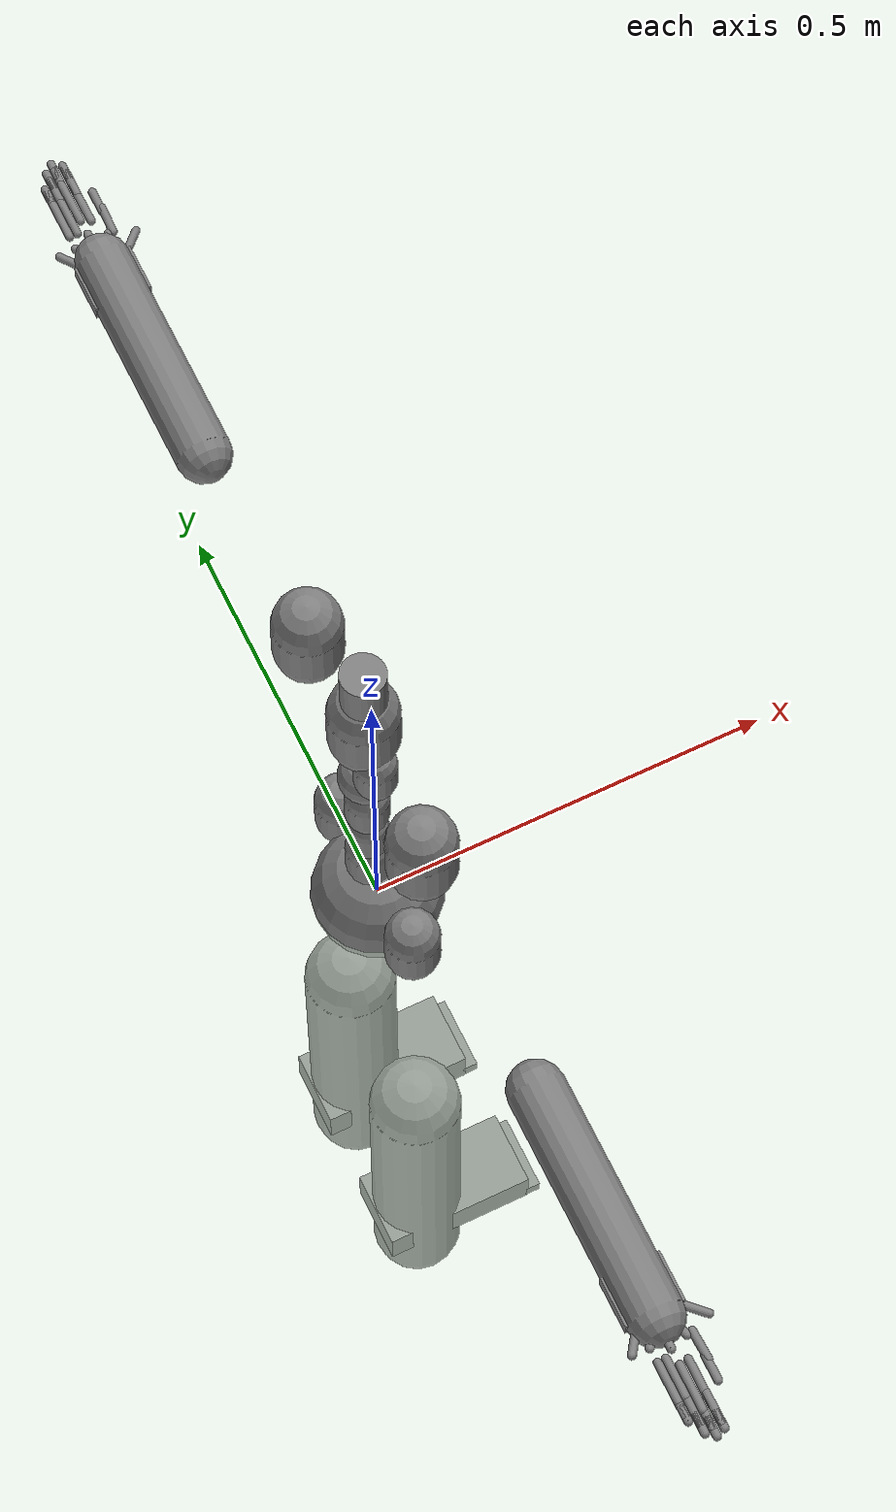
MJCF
<?xml version="1.0" ?>
<mujoco model="humanoid">
  <compiler coordinate="local"/>
  <statistic extent="2" center="0 0 1"/>
  <option timestep="0.00555"/>
  <default>
    <motor ctrlrange="-1 1" ctrllimited="true"/>
    <geom type="capsule" condim="1" friction="1.0 0.05 0.05" solimp=".9 .99 .003" solref=".015 1"/>
    <joint type="hinge" damping="0.1" stiffness="5" armature=".007" limited="true" solimplimit="0 .99 .01"/>
    <site size=".04" group="3"/>
  </default>
  <asset>
    <texture type="skybox" builtin="gradient" rgb1=".4 .5 .6" rgb2="0 0 0" width="100" height="100"/>
    <texture builtin="flat" height="1278" mark="cross" markrgb="1 1 1" name="texgeom" random="0.01" rgb1="0.8 0.6 0.4" rgb2="0.8 0.6 0.4" type="cube" width="127"/>
    <texture builtin="checker" height="100" name="texplane" rgb1="0 0 0" rgb2="0.8 0.8 0.8" type="2d" width="100"/>
    <material name="MatPlane" reflectance="0.5" shininess="1" specular="1" texrepeat="60 60" texture="texplane"/>
    <material name="geom" texture="texgeom" texuniform="true"/>
  </asset>
  <worldbody>
    <light cutoff="100" diffuse="1 1 1" dir="-0 0 -1.3" directional="true" exponent="1" pos="0 0 1.3" specular=".1 .1 .1"/>
    <geom conaffinity="1" condim="3" name="floor" pos="0 0 0" rgba="0.8 0.9 0.8 1" size="100 100 .2" type="plane" material="MatPlane"/>
    <body name="pHipOrigin" pos="0 0 0">
      <freejoint name="pHipOrigin"/>
      <geom type="sphere" contype="1" conaffinity="1" density="4629.6296296296305" size="0.07961" pos="0.0000 0.0000 -0.0000"/>
      <body name="jL5S1" pos="-0.00897069 0 0.08073599">
        <geom type="capsule" contype="1" conaffinity="1" density="1000" fromto="0 0 0.01625 0 0 0.05686" size="0.02843"/>
        <joint name="jL5S1_x" type="hinge" pos="0 0 0" axis="1 0 0" stiffness="500" damping="500" armature="0.02" range="-180.0000 180.0000"/>
        <joint name="jL5S1_y" type="hinge" pos="0 0 0" axis="0 1 0" stiffness="500" damping="500" armature="0.02" range="-180.0000 180.0000"/>
        <joint name="jL5S1_z" type="hinge" pos="0 0 0" axis="0 0 1" stiffness="500" damping="500" armature="0.02" range="-180.0000 180.0000"/>
        <body name="jL4L3" pos="0 0 0.06915518">
          <geom type="capsule" contype="1" conaffinity="1" density="1000" fromto="0 0 0.01383 0 0 0.04841" size="0.02420"/>
          <joint name="jL4L3_x" type="hinge" pos="0 0 0" axis="1 0 0" stiffness="500" damping="500" armature="0.02" range="-180.0000 180.0000"/>
          <joint name="jL4L3_y" type="hinge" pos="0 0 0" axis="0 1 0" stiffness="500" damping="500" armature="0.02" range="-180.0000 180.0000"/>
          <joint name="jL4L3_z" type="hinge" pos="0 0 0" axis="0 0 1" stiffness="500" damping="500" armature="0.02" range="-180.0000 180.0000"/>
          <body name="jL1T12" pos="-0.00057833 0 0.07496225">
            <geom type="capsule" contype="1" conaffinity="1" density="1000" fromto="0 0 0.01499 0 0 0.05248" size="0.02624"/>
            <joint name="jL1T12_x" type="hinge" pos="0 0 0" axis="1 0 0" stiffness="500" damping="500" armature="0.02" range="-180.0000 180.0000"/>
            <joint name="jL1T12_y" type="hinge" pos="0 0 0" axis="0 1 0" stiffness="500" damping="500" armature="0.02" range="-180.0000 180.0000"/>
            <joint name="jL1T12_z" type="hinge" pos="0 0 0" axis="0 0 1" stiffness="500" damping="500" armature="0.02" range="-180.0000 180.0000"/>
            <body name="jT9T8" pos="-0.00062379 0 0.08069769">
              <geom type="sphere" contype="1" conaffinity="1" density="1000" size="0.03228" pos="0.000 0.0000 0.032280"/>
              <joint name="jT9T8_x" type="hinge" pos="0 0 0" axis="1 0 0" stiffness="500" damping="500" armature="0.02" range="-180.0000 180.0000"/>
              <joint name="jT9T8_y" type="hinge" pos="0 0 0" axis="0 1 0" stiffness="500" damping="500" armature="0.02" range="-180.0000 180.0000"/>
              <joint name="jT9T8_z" type="hinge" pos="0 0 0" axis="0 0 1" stiffness="500" damping="500" armature="0.02" range="-180.0000 180.0000"/>
              <body name="jT1C7" pos="0 0 0.11781600">
                <geom type="capsule" contype="1" conaffinity="1" density="1000" fromto="0 0 0.02356 0 0 0.08247" size="0.04124"/>
                <joint name="jT1C7_x" type="hinge" pos="0 0 0" axis="1 0 0" stiffness="500" damping="500" armature="0.02" range="-180.0000 180.0000"/>
                <joint name="jT1C7_y" type="hinge" pos="0 0 0" axis="0 1 0" stiffness="500" damping="500" armature="0.02" range="-180.0000 180.0000"/>
                <joint name="jT1C7_z" type="hinge" pos="0 0 0" axis="0 0 1" stiffness="500" damping="500" armature="0.02" range="-180.0000 180.0000"/>
                <body name="jC1Head" pos="0.00103082 0 0.08737546">
                  <geom type="cylinder" contype="1" conaffinity="1" density="1000" fromto="0 0 0 0 0 0.08738" size="0.02621"/>
                  <joint name="jC1Head_x" type="hinge" pos="0 0 0" axis="1 0 0" stiffness="500" damping="500" armature="0.02" range="-180.0000 180.0000"/>
                  <joint name="jC1Head_y" type="hinge" pos="0 0 0" axis="0 1 0" stiffness="500" damping="500" armature="0.02" range="-180.0000 180.0000"/>
                  <joint name="jC1Head_z" type="hinge" pos="0 0 0" axis="0 0 1" stiffness="500" damping="500" armature="0.02" range="-180.0000 180.0000"/>
                </body>
              </body>
              <body name="jRightT4Shoulder" pos="0 -0.02727494 0.06650229">
                <geom type="capsule" contype="1" conaffinity="1" density="1000" fromto="0 0 0.01438 0 0 0.05031" size="0.02516"/>
                <joint name="jRightT4Shoulder_x" type="hinge" pos="0 0 0" axis="1 0 0" stiffness="500" damping="500" armature="0.02" range="-180.0000 180.0000"/>
                <joint name="jRightT4Shoulder_y" type="hinge" pos="0 0 0" axis="0 1 0" stiffness="500" damping="500" armature="0.02" range="-180.0000 180.0000"/>
                <joint name="jRightT4Shoulder_z" type="hinge" pos="0 0 0" axis="0 0 1" stiffness="500" damping="500" armature="0.02" range="-180.0000 180.0000"/>
                <body name="jRightShoulder" pos="0 -0.11701642 0">
                  <geom type="capsule" contype="1" conaffinity="1" density="1000" fromto="0 0 0.02340 0 0 0.08191" size="0.04096"/>
                  <joint name="jRightShoulder_x" type="hinge" pos="0 0 0" axis="1 0 0" stiffness="500" damping="500" armature="0.02" range="-180.0000 180.0000"/>
                  <joint name="jRightShoulder_y" type="hinge" pos="0 0 0" axis="0 1 0" stiffness="500" damping="500" armature="0.02" range="-180.0000 180.0000"/>
                  <joint name="jRightShoulder_z" type="hinge" pos="0 0 0" axis="0 0 1" stiffness="500" damping="500" armature="0.02" range="-180.0000 180.0000"/>
                  <body name="jRightElbow" pos="0 -0.27966020 0">
                    <geom type="capsule" contype="1" conaffinity="1" density="1000" fromto="0 0 0 0.00000000 -0.27966020 0.00000000" size="0.03356"/>
                    <joint name="jRightElbow_x" type="hinge" pos="0 0 0" axis="1 0 0" stiffness="500" damping="500" armature="0.02" range="-180.0000 180.0000"/>
                    <joint name="jRightElbow_y" type="hinge" pos="0 0 0" axis="0 1 0" stiffness="500" damping="500" armature="0.02" range="-180.0000 180.0000"/>
                    <joint name="jRightElbow_z" type="hinge" pos="0 0 0" axis="0 0 1" stiffness="500" damping="500" armature="0.02" range="-180.0000 180.0000"/>
                    <body name="jRightWrist" pos="0.00010053 -0.24976394 0">
                      <geom density="1000" type="box" pos="0 0 0" size="0.035 0.03 0.01" quat="1.0000 0.0000 0.0000 0.0000"/>
                      <joint name="jRightWrist_x" type="hinge" pos="0 0 0" axis="1 0 0" stiffness="500" damping="500" armature="0.02" range="-180.0000 180.0000"/>
                      <joint name="jRightWrist_y" type="hinge" pos="0 0 0" axis="0 1 0" stiffness="500" damping="500" armature="0.02" range="-180.0000 180.0000"/>
                      <joint name="jRightWrist_z" type="hinge" pos="0 0 0" axis="0 0 1" stiffness="500" damping="500" armature="0.02" range="-180.0000 180.0000"/>
                      <body name="jRightFirstCMC" pos="0.02649413 -0.02539610 -0.00119982">
                        <geom type="capsule" contype="1" conaffinity="1" density="1000" fromto="0 0 0 0.02649413 -0.02539610 -0.00119982" size="0.005"/>
                        <joint name="jRightFirstCMC_x" type="hinge" pos="0 0 0" axis="1 0 0" stiffness="500" damping="500" armature="0.02" range="-180.0000 180.0000"/>
                        <joint name="jRightFirstCMC_y" type="hinge" pos="0 0 0" axis="0 1 0" stiffness="500" damping="500" armature="0.02" range="-180.0000 180.0000"/>
                        <joint name="jRightFirstCMC_z" type="hinge" pos="0 0 0" axis="0 0 1" stiffness="500" damping="500" armature="0.02" range="-180.0000 180.0000"/>
                        <body name="jRightFirstMCP" pos="0.00123781 -0.03493008 0.00073807">
                          <geom type="capsule" contype="1" conaffinity="1" density="1000" fromto="0 0 0 0.00123781 -0.03493008 0.00073807" size="0.005"/>
                          <joint name="jRightFirstMCP_x" type="hinge" pos="0 0 0" axis="1 0 0" stiffness="500" damping="500" armature="0.02" range="-180.0000 180.0000"/>
                          <joint name="jRightFirstMCP_y" type="hinge" pos="0 0 0" axis="0 1 0" stiffness="500" damping="500" armature="0.02" range="-180.0000 180.0000"/>
                          <joint name="jRightFirstMCP_z" type="hinge" pos="0 0 0" axis="0 0 1" stiffness="500" damping="500" armature="0.02" range="-180.0000 180.0000"/>
                          <body name="jRightIP" pos="0 -0.02965622 0">
                            <geom type="capsule" contype="1" conaffinity="1" density="1000" fromto="0 0 0 0.00000000 -0.02965622 0.00000000" size="0.005"/>
                            <joint name="jRightIP_x" type="hinge" pos="0 0 0" axis="1 0 0" stiffness="500" damping="500" armature="0.02" range="-180.0000 180.0000"/>
                            <joint name="jRightIP_y" type="hinge" pos="0 0 0" axis="0 1 0" stiffness="500" damping="500" armature="0.02" range="-180.0000 180.0000"/>
                            <joint name="jRightIP_z" type="hinge" pos="0 0 0" axis="0 0 1" stiffness="500" damping="500" armature="0.02" range="-180.0000 180.0000"/>
                          </body>
                        </body>
                      </body>
                      <body name="jRightSecondCMC" pos="0.01060692 -0.03099007 -0.00054054">
                        <geom type="capsule" contype="1" conaffinity="1" density="1000" fromto="0 0 0 0.01060692 -0.03099007 -0.00054054" size="0.005"/>
                        <joint name="jRightSecondCMC_x" type="hinge" pos="0 0 0" axis="1 0 0" stiffness="500" damping="500" armature="0.02" range="-180.0000 180.0000"/>
                        <joint name="jRightSecondCMC_y" type="hinge" pos="0 0 0" axis="0 1 0" stiffness="500" damping="500" armature="0.02" range="-180.0000 180.0000"/>
                        <joint name="jRightSecondCMC_z" type="hinge" pos="0 0 0" axis="0 0 1" stiffness="500" damping="500" armature="0.02" range="-180.0000 180.0000"/>
                        <body name="jRightSecondMCP" pos="-0.00034290 -0.05469058 -0.00056732">
                          <geom type="capsule" contype="1" conaffinity="1" density="1000" fromto="0 0 0 -0.00034290 -0.05469058 -0.00056732" size="0.005"/>
                          <joint name="jRightSecondMCP_x" type="hinge" pos="0 0 0" axis="1 0 0" stiffness="500" damping="500" armature="0.02" range="-180.0000 180.0000"/>
                          <joint name="jRightSecondMCP_y" type="hinge" pos="0 0 0" axis="0 1 0" stiffness="500" damping="500" armature="0.02" range="-180.0000 180.0000"/>
                          <joint name="jRightSecondMCP_z" type="hinge" pos="0 0 0" axis="0 0 1" stiffness="500" damping="500" armature="0.02" range="-180.0000 180.0000"/>
                          <body name="jRightSecondPIP" pos="0 -0.03959557 0">
                            <geom type="capsule" contype="1" conaffinity="1" density="1000" fromto="0 0 0 0.00000000 -0.03959557 0.00000000" size="0.005"/>
                            <joint name="jRightSecondPIP_x" type="hinge" pos="0 0 0" axis="1 0 0" stiffness="500" damping="500" armature="0.02" range="-180.0000 180.0000"/>
                            <joint name="jRightSecondPIP_y" type="hinge" pos="0 0 0" axis="0 1 0" stiffness="500" damping="500" armature="0.02" range="-180.0000 180.0000"/>
                            <joint name="jRightSecondPIP_z" type="hinge" pos="0 0 0" axis="0 0 1" stiffness="500" damping="500" armature="0.02" range="-180.0000 180.0000"/>
                            <body name="jRightSecondDIP" pos="0 -0.02148326 0">
                              <geom type="capsule" contype="1" conaffinity="1" density="1000" fromto="0 0 0 0.00000000 -0.02148326 0.00000000" size="0.005"/>
                              <joint name="jRightSecondDIP_x" type="hinge" pos="0 0 0" axis="1 0 0" stiffness="500" damping="500" armature="0.02" range="-180.0000 180.0000"/>
                              <joint name="jRightSecondDIP_y" type="hinge" pos="0 0 0" axis="0 1 0" stiffness="500" damping="500" armature="0.02" range="-180.0000 180.0000"/>
                              <joint name="jRightSecondDIP_z" type="hinge" pos="0 0 0" axis="0 0 1" stiffness="500" damping="500" armature="0.02" range="-180.0000 180.0000"/>
                            </body>
                          </body>
                        </body>
                      </body>
                      <body name="jRightThirdCMC" pos="-0.00063977 -0.03459741 0.00145453">
                        <geom type="capsule" contype="1" conaffinity="1" density="1000" fromto="0 0 0 -0.00063977 -0.03459741 0.00145453" size="0.005"/>
                        <joint name="jRightThirdCMC_x" type="hinge" pos="0 0 0" axis="1 0 0" stiffness="500" damping="500" armature="0.02" range="-180.0000 180.0000"/>
                        <joint name="jRightThirdCMC_y" type="hinge" pos="0 0 0" axis="0 1 0" stiffness="500" damping="500" armature="0.02" range="-180.0000 180.0000"/>
                        <joint name="jRightThirdCMC_z" type="hinge" pos="0 0 0" axis="0 0 1" stiffness="500" damping="500" armature="0.02" range="-180.0000 180.0000"/>
                        <body name="jRightThirdMCP" pos="-0.00065011 -0.05386139 0.00146536">
                          <geom type="capsule" contype="1" conaffinity="1" density="1000" fromto="0 0 0 -0.00065011 -0.05386139 0.00146536" size="0.005"/>
                          <joint name="jRightThirdMCP_x" type="hinge" pos="0 0 0" axis="1 0 0" stiffness="500" damping="500" armature="0.02" range="-180.0000 180.0000"/>
                          <joint name="jRightThirdMCP_y" type="hinge" pos="0 0 0" axis="0 1 0" stiffness="500" damping="500" armature="0.02" range="-180.0000 180.0000"/>
                          <joint name="jRightThirdMCP_z" type="hinge" pos="0 0 0" axis="0 0 1" stiffness="500" damping="500" armature="0.02" range="-180.0000 180.0000"/>
                          <body name="jRightThirdPIP" pos="0 -0.03889234 0">
                            <geom type="capsule" contype="1" conaffinity="1" density="1000" fromto="0 0 0 0.00000000 -0.03889234 0.00000000" size="0.005"/>
                            <joint name="jRightThirdPIP_x" type="hinge" pos="0 0 0" axis="1 0 0" stiffness="500" damping="500" armature="0.02" range="-180.0000 180.0000"/>
                            <joint name="jRightThirdPIP_y" type="hinge" pos="0 0 0" axis="0 1 0" stiffness="500" damping="500" armature="0.02" range="-180.0000 180.0000"/>
                            <joint name="jRightThirdPIP_z" type="hinge" pos="0 0 0" axis="0 0 1" stiffness="500" damping="500" armature="0.02" range="-180.0000 180.0000"/>
                            <body name="jRightThirdDIP" pos="0 -0.02296187 0">
                              <geom type="capsule" contype="1" conaffinity="1" density="1000" fromto="0 0 0 0.00000000 -0.02296187 0.00000000" size="0.005"/>
                              <joint name="jRightThirdDIP_x" type="hinge" pos="0 0 0" axis="1 0 0" stiffness="500" damping="500" armature="0.02" range="-180.0000 180.0000"/>
                              <joint name="jRightThirdDIP_y" type="hinge" pos="0 0 0" axis="0 1 0" stiffness="500" damping="500" armature="0.02" range="-180.0000 180.0000"/>
                              <joint name="jRightThirdDIP_z" type="hinge" pos="0 0 0" axis="0 0 1" stiffness="500" damping="500" armature="0.02" range="-180.0000 180.0000"/>
                            </body>
                          </body>
                        </body>
                      </body>
                      <body name="jRightFourthCMC" pos="-0.01053436 -0.02933992 0.00069062">
                        <geom type="capsule" contype="1" conaffinity="1" density="1000" fromto="0 0 0 -0.01053436 -0.02933992 0.00069062" size="0.005"/>
                        <joint name="jRightFourthCMC_x" type="hinge" pos="0 0 0" axis="1 0 0" stiffness="500" damping="500" armature="0.02" range="-180.0000 180.0000"/>
                        <joint name="jRightFourthCMC_y" type="hinge" pos="0 0 0" axis="0 1 0" stiffness="500" damping="500" armature="0.02" range="-180.0000 180.0000"/>
                        <joint name="jRightFourthCMC_z" type="hinge" pos="0 0 0" axis="0 0 1" stiffness="500" damping="500" armature="0.02" range="-180.0000 180.0000"/>
                        <body name="jRightFourthMCP" pos="-0.00033687 -0.04617147 0.00072539">
                          <geom type="capsule" contype="1" conaffinity="1" density="1000" fromto="0 0 0 -0.00033687 -0.04617147 0.00072539" size="0.005"/>
                          <joint name="jRightFourthMCP_x" type="hinge" pos="0 0 0" axis="1 0 0" stiffness="500" damping="500" armature="0.02" range="-180.0000 180.0000"/>
                          <joint name="jRightFourthMCP_y" type="hinge" pos="0 0 0" axis="0 1 0" stiffness="500" damping="500" armature="0.02" range="-180.0000 180.0000"/>
                          <joint name="jRightFourthMCP_z" type="hinge" pos="0 0 0" axis="0 0 1" stiffness="500" damping="500" armature="0.02" range="-180.0000 180.0000"/>
                          <body name="jRightFourthPIP" pos="0 -0.04067477 0">
                            <geom type="capsule" contype="1" conaffinity="1" density="1000" fromto="0 0 0 0.00000000 -0.04067477 0.00000000" size="0.005"/>
                            <joint name="jRightFourthPIP_x" type="hinge" pos="0 0 0" axis="1 0 0" stiffness="500" damping="500" armature="0.02" range="-180.0000 180.0000"/>
                            <joint name="jRightFourthPIP_y" type="hinge" pos="0 0 0" axis="0 1 0" stiffness="500" damping="500" armature="0.02" range="-180.0000 180.0000"/>
                            <joint name="jRightFourthPIP_z" type="hinge" pos="0 0 0" axis="0 0 1" stiffness="500" damping="500" armature="0.02" range="-180.0000 180.0000"/>
                            <body name="jRightFourthDIP" pos="0 -0.02435815 0">
                              <geom type="capsule" contype="1" conaffinity="1" density="1000" fromto="0 0 0 0.00000000 -0.02435815 0.00000000" size="0.005"/>
                              <joint name="jRightFourthDIP_x" type="hinge" pos="0 0 0" axis="1 0 0" stiffness="500" damping="500" armature="0.02" range="-180.0000 180.0000"/>
                              <joint name="jRightFourthDIP_y" type="hinge" pos="0 0 0" axis="0 1 0" stiffness="500" damping="500" armature="0.02" range="-180.0000 180.0000"/>
                              <joint name="jRightFourthDIP_z" type="hinge" pos="0 0 0" axis="0 0 1" stiffness="500" damping="500" armature="0.02" range="-180.0000 180.0000"/>
                            </body>
                          </body>
                        </body>
                      </body>
                      <body name="jRightFifthCMC" pos="-0.02057659 -0.02867113 0.00056559">
                        <geom type="capsule" contype="1" conaffinity="1" density="1000" fromto="0 0 0 -0.02057659 -0.02867113 0.00056559" size="0.005"/>
                        <joint name="jRightFifthCMC_x" type="hinge" pos="0 0 0" axis="1 0 0" stiffness="500" damping="500" armature="0.02" range="-180.0000 180.0000"/>
                        <joint name="jRightFifthCMC_y" type="hinge" pos="0 0 0" axis="0 1 0" stiffness="500" damping="500" armature="0.02" range="-180.0000 180.0000"/>
                        <joint name="jRightFifthCMC_z" type="hinge" pos="0 0 0" axis="0 0 1" stiffness="500" damping="500" armature="0.02" range="-180.0000 180.0000"/>
                        <body name="jRightFifthMCP" pos="-0.00000697 -0.04718546 0.00064933">
                          <geom type="capsule" contype="1" conaffinity="1" density="1000" fromto="0 0 0 -0.00000697 -0.04718546 0.00064933" size="0.005"/>
                          <joint name="jRightFifthMCP_x" type="hinge" pos="0 0 0" axis="1 0 0" stiffness="500" damping="500" armature="0.02" range="-180.0000 180.0000"/>
                          <joint name="jRightFifthMCP_y" type="hinge" pos="0 0 0" axis="0 1 0" stiffness="500" damping="500" armature="0.02" range="-180.0000 180.0000"/>
                          <joint name="jRightFifthMCP_z" type="hinge" pos="0 0 0" axis="0 0 1" stiffness="500" damping="500" armature="0.02" range="-180.0000 180.0000"/>
                          <body name="jRightFifthPIP" pos="0 -0.03291958 0">
                            <geom type="capsule" contype="1" conaffinity="1" density="1000" fromto="0 0 0 0.00000000 -0.03291958 0.00000000" size="0.005"/>
                            <joint name="jRightFifthPIP_x" type="hinge" pos="0 0 0" axis="1 0 0" stiffness="500" damping="500" armature="0.02" range="-180.0000 180.0000"/>
                            <joint name="jRightFifthPIP_y" type="hinge" pos="0 0 0" axis="0 1 0" stiffness="500" damping="500" armature="0.02" range="-180.0000 180.0000"/>
                            <joint name="jRightFifthPIP_z" type="hinge" pos="0 0 0" axis="0 0 1" stiffness="500" damping="500" armature="0.02" range="-180.0000 180.0000"/>
                            <body name="jRightFifthDIP" pos="0 -0.01861694 0">
                              <geom type="capsule" contype="1" conaffinity="1" density="1000" fromto="0 0 0 0.00000000 -0.01861694 0.00000000" size="0.005"/>
                              <joint name="jRightFifthDIP_x" type="hinge" pos="0 0 0" axis="1 0 0" stiffness="500" damping="500" armature="0.02" range="-180.0000 180.0000"/>
                              <joint name="jRightFifthDIP_y" type="hinge" pos="0 0 0" axis="0 1 0" stiffness="500" damping="500" armature="0.02" range="-180.0000 180.0000"/>
                              <joint name="jRightFifthDIP_z" type="hinge" pos="0 0 0" axis="0 0 1" stiffness="500" damping="500" armature="0.02" range="-180.0000 180.0000"/>
                            </body>
                          </body>
                        </body>
                      </body>
                    </body>
                  </body>
                </body>
              </body>
              <body name="jLeftT4Shoulder" pos="0 0.02735422 0.06669559">
                <geom type="capsule" contype="1" conaffinity="1" density="1000" fromto="0 0 0.01442 0 0 0.05046" size="0.02523"/>
                <joint name="jLeftT4Shoulder_x" type="hinge" pos="0 0 0" axis="1 0 0" stiffness="500" damping="500" armature="0.02" range="-180.0000 180.0000"/>
                <joint name="jLeftT4Shoulder_y" type="hinge" pos="0 0 0" axis="0 1 0" stiffness="500" damping="500" armature="0.02" range="-180.0000 180.0000"/>
                <joint name="jLeftT4Shoulder_z" type="hinge" pos="0 0 0" axis="0 0 1" stiffness="500" damping="500" armature="0.02" range="-180.0000 180.0000"/>
                <body name="jLeftShoulder" pos="0 0.11727697 0">
                  <geom type="capsule" contype="1" conaffinity="1" density="1000" fromto="0 0 0.02346 0 0 0.08209" size="0.04105"/>
                  <joint name="jLeftShoulder_x" type="hinge" pos="0 0 0" axis="1 0 0" stiffness="500" damping="500" armature="0.02" range="-180.0000 180.0000"/>
                  <joint name="jLeftShoulder_y" type="hinge" pos="0 0 0" axis="0 1 0" stiffness="500" damping="500" armature="0.02" range="-180.0000 180.0000"/>
                  <joint name="jLeftShoulder_z" type="hinge" pos="0 0 0" axis="0 0 1" stiffness="500" damping="500" armature="0.02" range="-180.0000 180.0000"/>
                  <body name="jLeftElbow" pos="0 0.27942023 0">
                    <geom type="capsule" contype="1" conaffinity="1" density="1000" fromto="0 0 0 0.00000000 0.27942023 0.00000000" size="0.03353"/>
                    <joint name="jLeftElbow_x" type="hinge" pos="0 0 0" axis="1 0 0" stiffness="500" damping="500" armature="0.02" range="-180.0000 180.0000"/>
                    <joint name="jLeftElbow_y" type="hinge" pos="0 0 0" axis="0 1 0" stiffness="500" damping="500" armature="0.02" range="-180.0000 180.0000"/>
                    <joint name="jLeftElbow_z" type="hinge" pos="0 0 0" axis="0 0 1" stiffness="500" damping="500" armature="0.02" range="-180.0000 180.0000"/>
                    <body name="jLeftWrist" pos="0.00010042 0.24949146 0">
                      <geom density="1000" type="box" pos="0 0 0" size="0.035 0.03 0.01" quat="1.0000 0.0000 0.0000 0.0000"/>
                      <joint name="jLeftWrist_x" type="hinge" pos="0 0 0" axis="1 0 0" stiffness="500" damping="500" armature="0.02" range="-180.0000 180.0000"/>
                      <joint name="jLeftWrist_y" type="hinge" pos="0 0 0" axis="0 1 0" stiffness="500" damping="500" armature="0.02" range="-180.0000 180.0000"/>
                      <joint name="jLeftWrist_z" type="hinge" pos="0 0 0" axis="0 0 1" stiffness="500" damping="500" armature="0.02" range="-180.0000 180.0000"/>
                      <body name="jLeftFirstCMC" pos="0.02593151 0.02599275 -0.00116061">
                        <geom type="capsule" contype="1" conaffinity="1" density="1000" fromto="0 0 0 0.02593151 0.02599275 -0.00116061" size="0.005"/>
                        <joint name="jLeftFirstCMC_x" type="hinge" pos="0 0 0" axis="1 0 0" stiffness="500" damping="500" armature="0.02" range="-180.0000 180.0000"/>
                        <joint name="jLeftFirstCMC_y" type="hinge" pos="0 0 0" axis="0 1 0" stiffness="500" damping="500" armature="0.02" range="-180.0000 180.0000"/>
                        <joint name="jLeftFirstCMC_z" type="hinge" pos="0 0 0" axis="0 0 1" stiffness="500" damping="500" armature="0.02" range="-180.0000 180.0000"/>
                        <body name="jLeftFirstMCP" pos="0.00122588 0.03492930 0.00071928">
                          <geom type="capsule" contype="1" conaffinity="1" density="1000" fromto="0 0 0 0.00122588 0.03492930 0.00071928" size="0.005"/>
                          <joint name="jLeftFirstMCP_x" type="hinge" pos="0 0 0" axis="1 0 0" stiffness="500" damping="500" armature="0.02" range="-180.0000 180.0000"/>
                          <joint name="jLeftFirstMCP_y" type="hinge" pos="0 0 0" axis="0 1 0" stiffness="500" damping="500" armature="0.02" range="-180.0000 180.0000"/>
                          <joint name="jLeftFirstMCP_z" type="hinge" pos="0 0 0" axis="0 0 1" stiffness="500" damping="500" armature="0.02" range="-180.0000 180.0000"/>
                          <body name="jLeftIP" pos="0 0.02965622 0">
                            <geom type="capsule" contype="1" conaffinity="1" density="1000" fromto="0 0 0 0.00000000 0.02965622 0.00000000" size="0.005"/>
                            <joint name="jLeftIP_x" type="hinge" pos="0 0 0" axis="1 0 0" stiffness="500" damping="500" armature="0.02" range="-180.0000 180.0000"/>
                            <joint name="jLeftIP_y" type="hinge" pos="0 0 0" axis="0 1 0" stiffness="500" damping="500" armature="0.02" range="-180.0000 180.0000"/>
                            <joint name="jLeftIP_z" type="hinge" pos="0 0 0" axis="0 0 1" stiffness="500" damping="500" armature="0.02" range="-180.0000 180.0000"/>
                          </body>
                        </body>
                      </body>
                      <body name="jLeftSecondCMC" pos="0.01072909 0.03093305 -0.00054501">
                        <geom type="capsule" contype="1" conaffinity="1" density="1000" fromto="0 0 0 0.01072909 0.03093305 -0.00054501" size="0.005"/>
                        <joint name="jLeftSecondCMC_x" type="hinge" pos="0 0 0" axis="1 0 0" stiffness="500" damping="500" armature="0.02" range="-180.0000 180.0000"/>
                        <joint name="jLeftSecondCMC_y" type="hinge" pos="0 0 0" axis="0 1 0" stiffness="500" damping="500" armature="0.02" range="-180.0000 180.0000"/>
                        <joint name="jLeftSecondCMC_z" type="hinge" pos="0 0 0" axis="0 0 1" stiffness="500" damping="500" armature="0.02" range="-180.0000 180.0000"/>
                        <body name="jLeftSecondMCP" pos="-0.00029899 0.05469171 -0.00057433">
                          <geom type="capsule" contype="1" conaffinity="1" density="1000" fromto="0 0 0 -0.00029899 0.05469171 -0.00057433" size="0.005"/>
                          <joint name="jLeftSecondMCP_x" type="hinge" pos="0 0 0" axis="1 0 0" stiffness="500" damping="500" armature="0.02" range="-180.0000 180.0000"/>
                          <joint name="jLeftSecondMCP_y" type="hinge" pos="0 0 0" axis="0 1 0" stiffness="500" damping="500" armature="0.02" range="-180.0000 180.0000"/>
                          <joint name="jLeftSecondMCP_z" type="hinge" pos="0 0 0" axis="0 0 1" stiffness="500" damping="500" armature="0.02" range="-180.0000 180.0000"/>
                          <body name="jLeftSecondPIP" pos="0 0.03959557 0">
                            <geom type="capsule" contype="1" conaffinity="1" density="1000" fromto="0 0 0 0.00000000 0.03959557 0.00000000" size="0.005"/>
                            <joint name="jLeftSecondPIP_x" type="hinge" pos="0 0 0" axis="1 0 0" stiffness="500" damping="500" armature="0.02" range="-180.0000 180.0000"/>
                            <joint name="jLeftSecondPIP_y" type="hinge" pos="0 0 0" axis="0 1 0" stiffness="500" damping="500" armature="0.02" range="-180.0000 180.0000"/>
                            <joint name="jLeftSecondPIP_z" type="hinge" pos="0 0 0" axis="0 0 1" stiffness="500" damping="500" armature="0.02" range="-180.0000 180.0000"/>
                            <body name="jLeftSecondDIP" pos="0 0.02148326 0">
                              <geom type="capsule" contype="1" conaffinity="1" density="1000" fromto="0 0 0 0.00000000 0.02148326 0.00000000" size="0.005"/>
                              <joint name="jLeftSecondDIP_x" type="hinge" pos="0 0 0" axis="1 0 0" stiffness="500" damping="500" armature="0.02" range="-180.0000 180.0000"/>
                              <joint name="jLeftSecondDIP_y" type="hinge" pos="0 0 0" axis="0 1 0" stiffness="500" damping="500" armature="0.02" range="-180.0000 180.0000"/>
                              <joint name="jLeftSecondDIP_z" type="hinge" pos="0 0 0" axis="0 0 1" stiffness="500" damping="500" armature="0.02" range="-180.0000 180.0000"/>
                            </body>
                          </body>
                        </body>
                      </body>
                      <body name="jLeftThirdCMC" pos="-0.00064353 0.03460052 0.00140604">
                        <geom type="capsule" contype="1" conaffinity="1" density="1000" fromto="0 0 0 -0.00064353 0.03460052 0.00140604" size="0.005"/>
                        <joint name="jLeftThirdCMC_x" type="hinge" pos="0 0 0" axis="1 0 0" stiffness="500" damping="500" armature="0.02" range="-180.0000 180.0000"/>
                        <joint name="jLeftThirdCMC_y" type="hinge" pos="0 0 0" axis="0 1 0" stiffness="500" damping="500" armature="0.02" range="-180.0000 180.0000"/>
                        <joint name="jLeftThirdCMC_z" type="hinge" pos="0 0 0" axis="0 0 1" stiffness="500" damping="500" armature="0.02" range="-180.0000 180.0000"/>
                        <body name="jLeftThirdMCP" pos="-0.00065535 0.05386244 0.00143590">
                          <geom type="capsule" contype="1" conaffinity="1" density="1000" fromto="0 0 0 -0.00065535 0.05386244 0.00143590" size="0.005"/>
                          <joint name="jLeftThirdMCP_x" type="hinge" pos="0 0 0" axis="1 0 0" stiffness="500" damping="500" armature="0.02" range="-180.0000 180.0000"/>
                          <joint name="jLeftThirdMCP_y" type="hinge" pos="0 0 0" axis="0 1 0" stiffness="500" damping="500" armature="0.02" range="-180.0000 180.0000"/>
                          <joint name="jLeftThirdMCP_z" type="hinge" pos="0 0 0" axis="0 0 1" stiffness="500" damping="500" armature="0.02" range="-180.0000 180.0000"/>
                          <body name="jLeftThirdPIP" pos="0 0.03889234 0">
                            <geom type="capsule" contype="1" conaffinity="1" density="1000" fromto="0 0 0 0.00000000 0.03889234 0.00000000" size="0.005"/>
                            <joint name="jLeftThirdPIP_x" type="hinge" pos="0 0 0" axis="1 0 0" stiffness="500" damping="500" armature="0.02" range="-180.0000 180.0000"/>
                            <joint name="jLeftThirdPIP_y" type="hinge" pos="0 0 0" axis="0 1 0" stiffness="500" damping="500" armature="0.02" range="-180.0000 180.0000"/>
                            <joint name="jLeftThirdPIP_z" type="hinge" pos="0 0 0" axis="0 0 1" stiffness="500" damping="500" armature="0.02" range="-180.0000 180.0000"/>
                            <body name="jLeftThirdDIP" pos="0 0.02296187 0">
                              <geom type="capsule" contype="1" conaffinity="1" density="1000" fromto="0 0 0 0.00000000 0.02296187 0.00000000" size="0.005"/>
                              <joint name="jLeftThirdDIP_x" type="hinge" pos="0 0 0" axis="1 0 0" stiffness="500" damping="500" armature="0.02" range="-180.0000 180.0000"/>
                              <joint name="jLeftThirdDIP_y" type="hinge" pos="0 0 0" axis="0 1 0" stiffness="500" damping="500" armature="0.02" range="-180.0000 180.0000"/>
                              <joint name="jLeftThirdDIP_z" type="hinge" pos="0 0 0" axis="0 0 1" stiffness="500" damping="500" armature="0.02" range="-180.0000 180.0000"/>
                            </body>
                          </body>
                        </body>
                      </body>
                      <body name="jLeftFourthCMC" pos="-0.01092090 0.02918985 0.00073723">
                        <geom type="capsule" contype="1" conaffinity="1" density="1000" fromto="0 0 0 -0.01092090 0.02918985 0.00073723" size="0.005"/>
                        <joint name="jLeftFourthCMC_x" type="hinge" pos="0 0 0" axis="1 0 0" stiffness="500" damping="500" armature="0.02" range="-180.0000 180.0000"/>
                        <joint name="jLeftFourthCMC_y" type="hinge" pos="0 0 0" axis="0 1 0" stiffness="500" damping="500" armature="0.02" range="-180.0000 180.0000"/>
                        <joint name="jLeftFourthCMC_z" type="hinge" pos="0 0 0" axis="0 0 1" stiffness="500" damping="500" armature="0.02" range="-180.0000 180.0000"/>
                        <body name="jLeftFourthMCP" pos="-0.00036227 0.04616883 0.00076718">
                          <geom type="capsule" contype="1" conaffinity="1" density="1000" fromto="0 0 0 -0.00036227 0.04616883 0.00076718" size="0.005"/>
                          <joint name="jLeftFourthMCP_x" type="hinge" pos="0 0 0" axis="1 0 0" stiffness="500" damping="500" armature="0.02" range="-180.0000 180.0000"/>
                          <joint name="jLeftFourthMCP_y" type="hinge" pos="0 0 0" axis="0 1 0" stiffness="500" damping="500" armature="0.02" range="-180.0000 180.0000"/>
                          <joint name="jLeftFourthMCP_z" type="hinge" pos="0 0 0" axis="0 0 1" stiffness="500" damping="500" armature="0.02" range="-180.0000 180.0000"/>
                          <body name="jLeftFourthPIP" pos="0 0.04067477 0">
                            <geom type="capsule" contype="1" conaffinity="1" density="1000" fromto="0 0 0 0.00000000 0.04067477 0.00000000" size="0.005"/>
                            <joint name="jLeftFourthPIP_x" type="hinge" pos="0 0 0" axis="1 0 0" stiffness="500" damping="500" armature="0.02" range="-180.0000 180.0000"/>
                            <joint name="jLeftFourthPIP_y" type="hinge" pos="0 0 0" axis="0 1 0" stiffness="500" damping="500" armature="0.02" range="-180.0000 180.0000"/>
                            <joint name="jLeftFourthPIP_z" type="hinge" pos="0 0 0" axis="0 0 1" stiffness="500" damping="500" armature="0.02" range="-180.0000 180.0000"/>
                            <body name="jLeftFourthDIP" pos="0 0.02435815 0">
                              <geom type="capsule" contype="1" conaffinity="1" density="1000" fromto="0 0 0 0.00000000 0.02435815 0.00000000" size="0.005"/>
                              <joint name="jLeftFourthDIP_x" type="hinge" pos="0 0 0" axis="1 0 0" stiffness="500" damping="500" armature="0.02" range="-180.0000 180.0000"/>
                              <joint name="jLeftFourthDIP_y" type="hinge" pos="0 0 0" axis="0 1 0" stiffness="500" damping="500" armature="0.02" range="-180.0000 180.0000"/>
                              <joint name="jLeftFourthDIP_z" type="hinge" pos="0 0 0" axis="0 0 1" stiffness="500" damping="500" armature="0.02" range="-180.0000 180.0000"/>
                            </body>
                          </body>
                        </body>
                      </body>
                      <body name="jLeftFifthCMC" pos="-0.02119993 0.02821786 0.00057468">
                        <geom type="capsule" contype="1" conaffinity="1" density="1000" fromto="0 0 0 -0.02119993 0.02821786 0.00057468" size="0.005"/>
                        <joint name="jLeftFifthCMC_x" type="hinge" pos="0 0 0" axis="1 0 0" stiffness="500" damping="500" armature="0.02" range="-180.0000 180.0000"/>
                        <joint name="jLeftFifthCMC_y" type="hinge" pos="0 0 0" axis="0 1 0" stiffness="500" damping="500" armature="0.02" range="-180.0000 180.0000"/>
                        <joint name="jLeftFifthCMC_z" type="hinge" pos="0 0 0" axis="0 0 1" stiffness="500" damping="500" armature="0.02" range="-180.0000 180.0000"/>
                        <body name="jLeftFifthMCP" pos="-0.00001338 0.04718418 0.00067895">
                          <geom type="capsule" contype="1" conaffinity="1" density="1000" fromto="0 0 0 -0.00001338 0.04718418 0.00067895" size="0.005"/>
                          <joint name="jLeftFifthMCP_x" type="hinge" pos="0 0 0" axis="1 0 0" stiffness="500" damping="500" armature="0.02" range="-180.0000 180.0000"/>
                          <joint name="jLeftFifthMCP_y" type="hinge" pos="0 0 0" axis="0 1 0" stiffness="500" damping="500" armature="0.02" range="-180.0000 180.0000"/>
                          <joint name="jLeftFifthMCP_z" type="hinge" pos="0 0 0" axis="0 0 1" stiffness="500" damping="500" armature="0.02" range="-180.0000 180.0000"/>
                          <body name="jLeftFifthPIP" pos="0 0.03291958 0">
                            <geom type="capsule" contype="1" conaffinity="1" density="1000" fromto="0 0 0 0.00000000 0.03291958 0.00000000" size="0.005"/>
                            <joint name="jLeftFifthPIP_x" type="hinge" pos="0 0 0" axis="1 0 0" stiffness="500" damping="500" armature="0.02" range="-180.0000 180.0000"/>
                            <joint name="jLeftFifthPIP_y" type="hinge" pos="0 0 0" axis="0 1 0" stiffness="500" damping="500" armature="0.02" range="-180.0000 180.0000"/>
                            <joint name="jLeftFifthPIP_z" type="hinge" pos="0 0 0" axis="0 0 1" stiffness="500" damping="500" armature="0.02" range="-180.0000 180.0000"/>
                            <body name="jLeftFifthDIP" pos="0 0.01861694 0">
                              <geom type="capsule" contype="1" conaffinity="1" density="1000" fromto="0 0 0 0.00000000 0.01861694 0.00000000" size="0.005"/>
                              <joint name="jLeftFifthDIP_x" type="hinge" pos="0 0 0" axis="1 0 0" stiffness="500" damping="500" armature="0.02" range="-180.0000 180.0000"/>
                              <joint name="jLeftFifthDIP_y" type="hinge" pos="0 0 0" axis="0 1 0" stiffness="500" damping="500" armature="0.02" range="-180.0000 180.0000"/>
                              <joint name="jLeftFifthDIP_z" type="hinge" pos="0 0 0" axis="0 0 1" stiffness="500" damping="500" armature="0.02" range="-180.0000 180.0000"/>
                            </body>
                          </body>
                        </body>
                      </body>
                    </body>
                  </body>
                </body>
              </body>
            </body>
          </body>
        </body>
      </body>
      <body name="jRightHip" pos="-0.00016093 -0.09550161 0.00144873">
        <geom type="capsule" contype="1" conaffinity="1" density="1000" fromto="0 0 0.01910 0 0 0.06686" size="0.03343"/>
        <joint name="jRightHip_x" type="hinge" pos="0 0 0" axis="1 0 0" stiffness="500" damping="500" armature="0.02" range="-180.0000 180.0000"/>
        <joint name="jRightHip_y" type="hinge" pos="0 0 0" axis="0 1 0" stiffness="500" damping="500" armature="0.02" range="-180.0000 180.0000"/>
        <joint name="jRightHip_z" type="hinge" pos="0 0 0" axis="0 0 1" stiffness="500" damping="500" armature="0.02" range="-180.0000 180.0000"/>
        <body name="jRightKnee" pos="0.00005800 0 -0.48645913">
          <geom type="capsule" contype="1" conaffinity="1" density="1000" fromto="0 0 0 0.00005800 0.00000000 -0.48645913" size="0.05838"/>
          <joint name="jRightKnee_x" type="hinge" pos="0 0 0" axis="1 0 0" stiffness="500" damping="500" armature="0.02" range="-180.0000 180.0000"/>
          <joint name="jRightKnee_y" type="hinge" pos="0 0 0" axis="0 1 0" stiffness="500" damping="500" armature="0.02" range="-180.0000 180.0000"/>
          <joint name="jRightKnee_z" type="hinge" pos="0 0 0" axis="0 0 1" stiffness="500" damping="500" armature="0.02" range="-180.0000 180.0000"/>
          <body name="jRightAnkle" pos="0.00038838 0 -0.34395777">
            <geom density="1000" type="box" pos="0.04 0. -0.03" size="0.1 0.05 0.03" quat="1.0 0 0 0"/>
            <joint name="jRightAnkle_x" type="hinge" pos="0 0 0" axis="1 0 0" stiffness="500" damping="500" armature="0.02" range="-180.0000 180.0000"/>
            <joint name="jRightAnkle_y" type="hinge" pos="0 0 0" axis="0 1 0" stiffness="500" damping="500" armature="0.02" range="-180.0000 180.0000"/>
            <joint name="jRightAnkle_z" type="hinge" pos="0 0 0" axis="0 0 1" stiffness="500" damping="500" armature="0.02" range="-180.0000 180.0000"/>
            <body name="jRightBallFoot" pos="0.14730154 0 -0.06757621">
              <geom density="1000" type="box" pos="0 0 0.02" size="0.01 0.05 0.01" quat="1.0 0 0 0"/>
              <joint name="jRightBallFoot_x" type="hinge" pos="0 0 0" axis="1 0 0" stiffness="500" damping="500" armature="0.02" range="-180.0000 180.0000"/>
              <joint name="jRightBallFoot_y" type="hinge" pos="0 0 0" axis="0 1 0" stiffness="500" damping="500" armature="0.02" range="-180.0000 180.0000"/>
              <joint name="jRightBallFoot_z" type="hinge" pos="0 0 0" axis="0 0 1" stiffness="500" damping="500" armature="0.02" range="-180.0000 180.0000"/>
            </body>
          </body>
        </body>
      </body>
      <body name="jLeftHip" pos="-0.00015714 0.09447188 0.00141415">
        <geom type="capsule" contype="1" conaffinity="1" density="1000" fromto="0 0 0.01890 0 0 0.06614" size="0.03307"/>
        <joint name="jLeftHip_x" type="hinge" pos="0 0 0" axis="1 0 0" stiffness="500" damping="500" armature="0.02" range="-180.0000 180.0000"/>
        <joint name="jLeftHip_y" type="hinge" pos="0 0 0" axis="0 1 0" stiffness="500" damping="500" armature="0.02" range="-180.0000 180.0000"/>
        <joint name="jLeftHip_z" type="hinge" pos="0 0 0" axis="0 0 1" stiffness="500" damping="500" armature="0.02" range="-180.0000 180.0000"/>
        <body name="jLeftKnee" pos="0.00005815 0 -0.48773443">
          <geom type="capsule" contype="1" conaffinity="1" density="1000" fromto="0 0 0 0.00005815 0.00000000 -0.48773443" size="0.05853"/>
          <joint name="jLeftKnee_x" type="hinge" pos="0 0 0" axis="1 0 0" stiffness="500" damping="500" armature="0.02" range="-180.0000 180.0000"/>
          <joint name="jLeftKnee_y" type="hinge" pos="0 0 0" axis="0 1 0" stiffness="500" damping="500" armature="0.02" range="-180.0000 180.0000"/>
          <joint name="jLeftKnee_z" type="hinge" pos="0 0 0" axis="0 0 1" stiffness="500" damping="500" armature="0.02" range="-180.0000 180.0000"/>
          <body name="jLeftAnkle" pos="0.00038838 0 -0.34395771">
            <geom density="1000" type="box" pos="0.04 0. -0.03" size="0.1 0.05 0.03" quat="1.0 0 0 0"/>
            <joint name="jLeftAnkle_x" type="hinge" pos="0 0 0" axis="1 0 0" stiffness="500" damping="500" armature="0.02" range="-180.0000 180.0000"/>
            <joint name="jLeftAnkle_y" type="hinge" pos="0 0 0" axis="0 1 0" stiffness="500" damping="500" armature="0.02" range="-180.0000 180.0000"/>
            <joint name="jLeftAnkle_z" type="hinge" pos="0 0 0" axis="0 0 1" stiffness="500" damping="500" armature="0.02" range="-180.0000 180.0000"/>
            <body name="jLeftBallFoot" pos="0.14730155 0 -0.06757621">
              <geom density="1000" type="box" pos="0 0 0.02" size="0.01 0.05 0.01" quat="1.0 0 0 0"/>
              <joint name="jLeftBallFoot_x" type="hinge" pos="0 0 0" axis="1 0 0" stiffness="500" damping="500" armature="0.02" range="-180.0000 180.0000"/>
              <joint name="jLeftBallFoot_y" type="hinge" pos="0 0 0" axis="0 1 0" stiffness="500" damping="500" armature="0.02" range="-180.0000 180.0000"/>
              <joint name="jLeftBallFoot_z" type="hinge" pos="0 0 0" axis="0 0 1" stiffness="500" damping="500" armature="0.02" range="-180.0000 180.0000"/>
            </body>
          </body>
        </body>
      </body>
    </body>
  </worldbody>
  <actuator>
    <motor name="jL5S1_x" joint="jL5S1_x" gear="500"/>
    <motor name="jL5S1_y" joint="jL5S1_y" gear="500"/>
    <motor name="jL5S1_z" joint="jL5S1_z" gear="500"/>
    <motor name="jL4L3_x" joint="jL4L3_x" gear="500"/>
    <motor name="jL4L3_y" joint="jL4L3_y" gear="500"/>
    <motor name="jL4L3_z" joint="jL4L3_z" gear="500"/>
    <motor name="jL1T12_x" joint="jL1T12_x" gear="500"/>
    <motor name="jL1T12_y" joint="jL1T12_y" gear="500"/>
    <motor name="jL1T12_z" joint="jL1T12_z" gear="500"/>
    <motor name="jT9T8_x" joint="jT9T8_x" gear="500"/>
    <motor name="jT9T8_y" joint="jT9T8_y" gear="500"/>
    <motor name="jT9T8_z" joint="jT9T8_z" gear="500"/>
    <motor name="jT1C7_x" joint="jT1C7_x" gear="500"/>
    <motor name="jT1C7_y" joint="jT1C7_y" gear="500"/>
    <motor name="jT1C7_z" joint="jT1C7_z" gear="500"/>
    <motor name="jC1Head_x" joint="jC1Head_x" gear="500"/>
    <motor name="jC1Head_y" joint="jC1Head_y" gear="500"/>
    <motor name="jC1Head_z" joint="jC1Head_z" gear="500"/>
    <motor name="jRightT4Shoulder_x" joint="jRightT4Shoulder_x" gear="500"/>
    <motor name="jRightT4Shoulder_y" joint="jRightT4Shoulder_y" gear="500"/>
    <motor name="jRightT4Shoulder_z" joint="jRightT4Shoulder_z" gear="500"/>
    <motor name="jRightShoulder_x" joint="jRightShoulder_x" gear="500"/>
    <motor name="jRightShoulder_y" joint="jRightShoulder_y" gear="500"/>
    <motor name="jRightShoulder_z" joint="jRightShoulder_z" gear="500"/>
    <motor name="jRightElbow_x" joint="jRightElbow_x" gear="500"/>
    <motor name="jRightElbow_y" joint="jRightElbow_y" gear="500"/>
    <motor name="jRightElbow_z" joint="jRightElbow_z" gear="500"/>
    <motor name="jRightWrist_x" joint="jRightWrist_x" gear="500"/>
    <motor name="jRightWrist_y" joint="jRightWrist_y" gear="500"/>
    <motor name="jRightWrist_z" joint="jRightWrist_z" gear="500"/>
    <motor name="jLeftT4Shoulder_x" joint="jLeftT4Shoulder_x" gear="500"/>
    <motor name="jLeftT4Shoulder_y" joint="jLeftT4Shoulder_y" gear="500"/>
    <motor name="jLeftT4Shoulder_z" joint="jLeftT4Shoulder_z" gear="500"/>
    <motor name="jLeftShoulder_x" joint="jLeftShoulder_x" gear="500"/>
    <motor name="jLeftShoulder_y" joint="jLeftShoulder_y" gear="500"/>
    <motor name="jLeftShoulder_z" joint="jLeftShoulder_z" gear="500"/>
    <motor name="jLeftElbow_x" joint="jLeftElbow_x" gear="500"/>
    <motor name="jLeftElbow_y" joint="jLeftElbow_y" gear="500"/>
    <motor name="jLeftElbow_z" joint="jLeftElbow_z" gear="500"/>
    <motor name="jLeftWrist_x" joint="jLeftWrist_x" gear="500"/>
    <motor name="jLeftWrist_y" joint="jLeftWrist_y" gear="500"/>
    <motor name="jLeftWrist_z" joint="jLeftWrist_z" gear="500"/>
    <motor name="jRightHip_x" joint="jRightHip_x" gear="500"/>
    <motor name="jRightHip_y" joint="jRightHip_y" gear="500"/>
    <motor name="jRightHip_z" joint="jRightHip_z" gear="500"/>
    <motor name="jRightKnee_x" joint="jRightKnee_x" gear="500"/>
    <motor name="jRightKnee_y" joint="jRightKnee_y" gear="500"/>
    <motor name="jRightKnee_z" joint="jRightKnee_z" gear="500"/>
    <motor name="jRightAnkle_x" joint="jRightAnkle_x" gear="500"/>
    <motor name="jRightAnkle_y" joint="jRightAnkle_y" gear="500"/>
    <motor name="jRightAnkle_z" joint="jRightAnkle_z" gear="500"/>
    <motor name="jRightBallFoot_x" joint="jRightBallFoot_x" gear="500"/>
    <motor name="jRightBallFoot_y" joint="jRightBallFoot_y" gear="500"/>
    <motor name="jRightBallFoot_z" joint="jRightBallFoot_z" gear="500"/>
    <motor name="jLeftHip_x" joint="jLeftHip_x" gear="500"/>
    <motor name="jLeftHip_y" joint="jLeftHip_y" gear="500"/>
    <motor name="jLeftHip_z" joint="jLeftHip_z" gear="500"/>
    <motor name="jLeftKnee_x" joint="jLeftKnee_x" gear="500"/>
    <motor name="jLeftKnee_y" joint="jLeftKnee_y" gear="500"/>
    <motor name="jLeftKnee_z" joint="jLeftKnee_z" gear="500"/>
    <motor name="jLeftAnkle_x" joint="jLeftAnkle_x" gear="500"/>
    <motor name="jLeftAnkle_y" joint="jLeftAnkle_y" gear="500"/>
    <motor name="jLeftAnkle_z" joint="jLeftAnkle_z" gear="500"/>
    <motor name="jLeftBallFoot_x" joint="jLeftBallFoot_x" gear="500"/>
    <motor name="jLeftBallFoot_y" joint="jLeftBallFoot_y" gear="500"/>
    <motor name="jLeftBallFoot_z" joint="jLeftBallFoot_z" gear="500"/>
    <motor name="jLeftFirstCMC_x" joint="jLeftFirstCMC_x" gear="500"/>
    <motor name="jLeftFirstCMC_y" joint="jLeftFirstCMC_y" gear="500"/>
    <motor name="jLeftFirstCMC_z" joint="jLeftFirstCMC_z" gear="500"/>
    <motor name="jLeftFirstMCP_x" joint="jLeftFirstMCP_x" gear="500"/>
    <motor name="jLeftFirstMCP_y" joint="jLeftFirstMCP_y" gear="500"/>
    <motor name="jLeftFirstMCP_z" joint="jLeftFirstMCP_z" gear="500"/>
    <motor name="jLeftIP_x" joint="jLeftIP_x" gear="500"/>
    <motor name="jLeftIP_y" joint="jLeftIP_y" gear="500"/>
    <motor name="jLeftIP_z" joint="jLeftIP_z" gear="500"/>
    <motor name="jLeftSecondCMC_x" joint="jLeftSecondCMC_x" gear="500"/>
    <motor name="jLeftSecondCMC_y" joint="jLeftSecondCMC_y" gear="500"/>
    <motor name="jLeftSecondCMC_z" joint="jLeftSecondCMC_z" gear="500"/>
    <motor name="jLeftSecondMCP_x" joint="jLeftSecondMCP_x" gear="500"/>
    <motor name="jLeftSecondMCP_y" joint="jLeftSecondMCP_y" gear="500"/>
    <motor name="jLeftSecondMCP_z" joint="jLeftSecondMCP_z" gear="500"/>
    <motor name="jLeftSecondPIP_x" joint="jLeftSecondPIP_x" gear="500"/>
    <motor name="jLeftSecondPIP_y" joint="jLeftSecondPIP_y" gear="500"/>
    <motor name="jLeftSecondPIP_z" joint="jLeftSecondPIP_z" gear="500"/>
    <motor name="jLeftSecondDIP_x" joint="jLeftSecondDIP_x" gear="500"/>
    <motor name="jLeftSecondDIP_y" joint="jLeftSecondDIP_y" gear="500"/>
    <motor name="jLeftSecondDIP_z" joint="jLeftSecondDIP_z" gear="500"/>
    <motor name="jLeftThirdCMC_x" joint="jLeftThirdCMC_x" gear="500"/>
    <motor name="jLeftThirdCMC_y" joint="jLeftThirdCMC_y" gear="500"/>
    <motor name="jLeftThirdCMC_z" joint="jLeftThirdCMC_z" gear="500"/>
    <motor name="jLeftThirdMCP_x" joint="jLeftThirdMCP_x" gear="500"/>
    <motor name="jLeftThirdMCP_y" joint="jLeftThirdMCP_y" gear="500"/>
    <motor name="jLeftThirdMCP_z" joint="jLeftThirdMCP_z" gear="500"/>
    <motor name="jLeftThirdPIP_x" joint="jLeftThirdPIP_x" gear="500"/>
    <motor name="jLeftThirdPIP_y" joint="jLeftThirdPIP_y" gear="500"/>
    <motor name="jLeftThirdPIP_z" joint="jLeftThirdPIP_z" gear="500"/>
    <motor name="jLeftThirdDIP_x" joint="jLeftThirdDIP_x" gear="500"/>
    <motor name="jLeftThirdDIP_y" joint="jLeftThirdDIP_y" gear="500"/>
    <motor name="jLeftThirdDIP_z" joint="jLeftThirdDIP_z" gear="500"/>
    <motor name="jLeftFourthCMC_x" joint="jLeftFourthCMC_x" gear="500"/>
    <motor name="jLeftFourthCMC_y" joint="jLeftFourthCMC_y" gear="500"/>
    <motor name="jLeftFourthCMC_z" joint="jLeftFourthCMC_z" gear="500"/>
    <motor name="jLeftFourthMCP_x" joint="jLeftFourthMCP_x" gear="500"/>
    <motor name="jLeftFourthMCP_y" joint="jLeftFourthMCP_y" gear="500"/>
    <motor name="jLeftFourthMCP_z" joint="jLeftFourthMCP_z" gear="500"/>
    <motor name="jLeftFourthPIP_x" joint="jLeftFourthPIP_x" gear="500"/>
    <motor name="jLeftFourthPIP_y" joint="jLeftFourthPIP_y" gear="500"/>
    <motor name="jLeftFourthPIP_z" joint="jLeftFourthPIP_z" gear="500"/>
    <motor name="jLeftFourthDIP_x" joint="jLeftFourthDIP_x" gear="500"/>
    <motor name="jLeftFourthDIP_y" joint="jLeftFourthDIP_y" gear="500"/>
    <motor name="jLeftFourthDIP_z" joint="jLeftFourthDIP_z" gear="500"/>
    <motor name="jLeftFifthCMC_x" joint="jLeftFifthCMC_x" gear="500"/>
    <motor name="jLeftFifthCMC_y" joint="jLeftFifthCMC_y" gear="500"/>
    <motor name="jLeftFifthCMC_z" joint="jLeftFifthCMC_z" gear="500"/>
    <motor name="jLeftFifthMCP_x" joint="jLeftFifthMCP_x" gear="500"/>
    <motor name="jLeftFifthMCP_y" joint="jLeftFifthMCP_y" gear="500"/>
    <motor name="jLeftFifthMCP_z" joint="jLeftFifthMCP_z" gear="500"/>
    <motor name="jLeftFifthPIP_x" joint="jLeftFifthPIP_x" gear="500"/>
    <motor name="jLeftFifthPIP_y" joint="jLeftFifthPIP_y" gear="500"/>
    <motor name="jLeftFifthPIP_z" joint="jLeftFifthPIP_z" gear="500"/>
    <motor name="jLeftFifthDIP_x" joint="jLeftFifthDIP_x" gear="500"/>
    <motor name="jLeftFifthDIP_y" joint="jLeftFifthDIP_y" gear="500"/>
    <motor name="jLeftFifthDIP_z" joint="jLeftFifthDIP_z" gear="500"/>
    <motor name="jRightFirstCMC_x" joint="jRightFirstCMC_x" gear="500"/>
    <motor name="jRightFirstCMC_y" joint="jRightFirstCMC_y" gear="500"/>
    <motor name="jRightFirstCMC_z" joint="jRightFirstCMC_z" gear="500"/>
    <motor name="jRightFirstMCP_x" joint="jRightFirstMCP_x" gear="500"/>
    <motor name="jRightFirstMCP_y" joint="jRightFirstMCP_y" gear="500"/>
    <motor name="jRightFirstMCP_z" joint="jRightFirstMCP_z" gear="500"/>
    <motor name="jRightIP_x" joint="jRightIP_x" gear="500"/>
    <motor name="jRightIP_y" joint="jRightIP_y" gear="500"/>
    <motor name="jRightIP_z" joint="jRightIP_z" gear="500"/>
    <motor name="jRightSecondCMC_x" joint="jRightSecondCMC_x" gear="500"/>
    <motor name="jRightSecondCMC_y" joint="jRightSecondCMC_y" gear="500"/>
    <motor name="jRightSecondCMC_z" joint="jRightSecondCMC_z" gear="500"/>
    <motor name="jRightSecondMCP_x" joint="jRightSecondMCP_x" gear="500"/>
    <motor name="jRightSecondMCP_y" joint="jRightSecondMCP_y" gear="500"/>
    <motor name="jRightSecondMCP_z" joint="jRightSecondMCP_z" gear="500"/>
    <motor name="jRightSecondPIP_x" joint="jRightSecondPIP_x" gear="500"/>
    <motor name="jRightSecondPIP_y" joint="jRightSecondPIP_y" gear="500"/>
    <motor name="jRightSecondPIP_z" joint="jRightSecondPIP_z" gear="500"/>
    <motor name="jRightSecondDIP_x" joint="jRightSecondDIP_x" gear="500"/>
    <motor name="jRightSecondDIP_y" joint="jRightSecondDIP_y" gear="500"/>
    <motor name="jRightSecondDIP_z" joint="jRightSecondDIP_z" gear="500"/>
    <motor name="jRightThirdCMC_x" joint="jRightThirdCMC_x" gear="500"/>
    <motor name="jRightThirdCMC_y" joint="jRightThirdCMC_y" gear="500"/>
    <motor name="jRightThirdCMC_z" joint="jRightThirdCMC_z" gear="500"/>
    <motor name="jRightThirdMCP_x" joint="jRightThirdMCP_x" gear="500"/>
    <motor name="jRightThirdMCP_y" joint="jRightThirdMCP_y" gear="500"/>
    <motor name="jRightThirdMCP_z" joint="jRightThirdMCP_z" gear="500"/>
    <motor name="jRightThirdPIP_x" joint="jRightThirdPIP_x" gear="500"/>
    <motor name="jRightThirdPIP_y" joint="jRightThirdPIP_y" gear="500"/>
    <motor name="jRightThirdPIP_z" joint="jRightThirdPIP_z" gear="500"/>
    <motor name="jRightThirdDIP_x" joint="jRightThirdDIP_x" gear="500"/>
    <motor name="jRightThirdDIP_y" joint="jRightThirdDIP_y" gear="500"/>
    <motor name="jRightThirdDIP_z" joint="jRightThirdDIP_z" gear="500"/>
    <motor name="jRightFourthCMC_x" joint="jRightFourthCMC_x" gear="500"/>
    <motor name="jRightFourthCMC_y" joint="jRightFourthCMC_y" gear="500"/>
    <motor name="jRightFourthCMC_z" joint="jRightFourthCMC_z" gear="500"/>
    <motor name="jRightFourthMCP_x" joint="jRightFourthMCP_x" gear="500"/>
    <motor name="jRightFourthMCP_y" joint="jRightFourthMCP_y" gear="500"/>
    <motor name="jRightFourthMCP_z" joint="jRightFourthMCP_z" gear="500"/>
    <motor name="jRightFourthPIP_x" joint="jRightFourthPIP_x" gear="500"/>
    <motor name="jRightFourthPIP_y" joint="jRightFourthPIP_y" gear="500"/>
    <motor name="jRightFourthPIP_z" joint="jRightFourthPIP_z" gear="500"/>
    <motor name="jRightFourthDIP_x" joint="jRightFourthDIP_x" gear="500"/>
    <motor name="jRightFourthDIP_y" joint="jRightFourthDIP_y" gear="500"/>
    <motor name="jRightFourthDIP_z" joint="jRightFourthDIP_z" gear="500"/>
    <motor name="jRightFifthCMC_x" joint="jRightFifthCMC_x" gear="500"/>
    <motor name="jRightFifthCMC_y" joint="jRightFifthCMC_y" gear="500"/>
    <motor name="jRightFifthCMC_z" joint="jRightFifthCMC_z" gear="500"/>
    <motor name="jRightFifthMCP_x" joint="jRightFifthMCP_x" gear="500"/>
    <motor name="jRightFifthMCP_y" joint="jRightFifthMCP_y" gear="500"/>
    <motor name="jRightFifthMCP_z" joint="jRightFifthMCP_z" gear="500"/>
    <motor name="jRightFifthPIP_x" joint="jRightFifthPIP_x" gear="500"/>
    <motor name="jRightFifthPIP_y" joint="jRightFifthPIP_y" gear="500"/>
    <motor name="jRightFifthPIP_z" joint="jRightFifthPIP_z" gear="500"/>
    <motor name="jRightFifthDIP_x" joint="jRightFifthDIP_x" gear="500"/>
    <motor name="jRightFifthDIP_y" joint="jRightFifthDIP_y" gear="500"/>
    <motor name="jRightFifthDIP_z" joint="jRightFifthDIP_z" gear="500"/>
  </actuator>
</mujoco>
